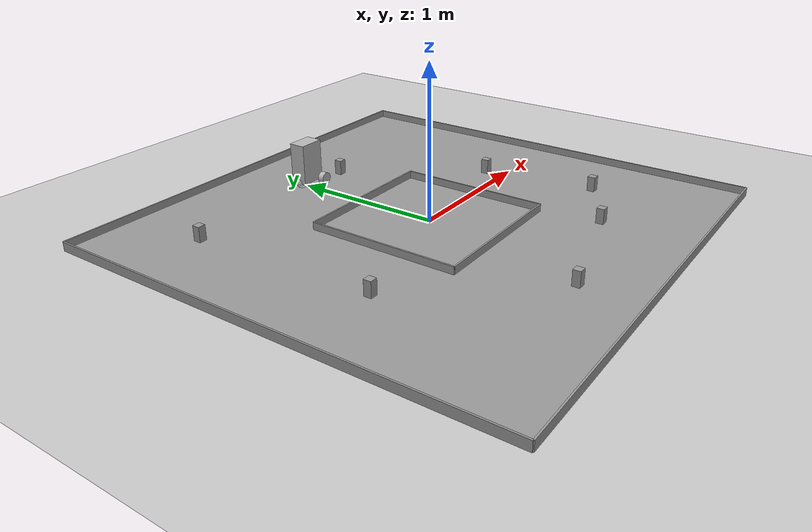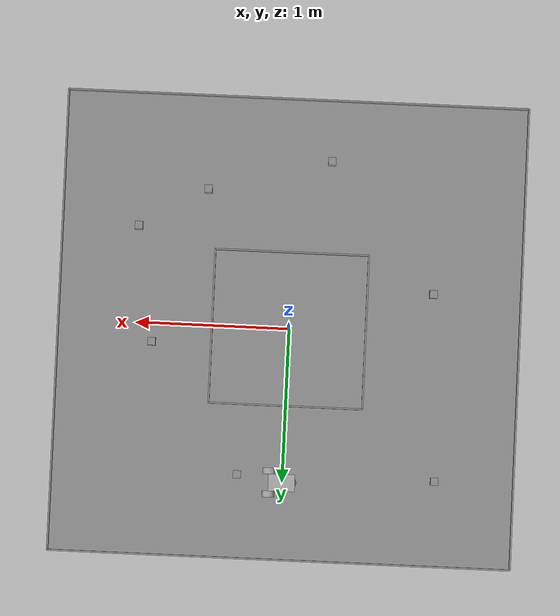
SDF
<sdf version="1.7">
 <world name="default">
  <light name="sun" type="directional">
   <pose>0 0 10 0 -0 0</pose>
   <diffuse>0.8 0.8 0.8 1</diffuse>
   <specular>0.2 0.2 0.2 1</specular>
   <attenuation>
    <range>1000</range>
    <constant>0.9</constant>
    <linear>0.01</linear>
    <quadratic>0.001</quadratic>
   </attenuation>
   <direction>-0.5 0.1 -0.9</direction>
   <spot><inner_angle>0</inner_angle><outer_angle>0</outer_angle><falloff>0</falloff></spot>
  </light>
  <model name="ground_plane">
   <static>1</static>
   <link name="link">
    <collision name="collision">
     <geometry><plane><normal>0 0 1</normal><size>100 100</size></plane></geometry>
     <surface><friction><ode><mu>100</mu><mu2>50</mu2></ode></friction></surface>
    </collision>
    <visual name="visual">
     <cast_shadows>0</cast_shadows>
     <geometry><plane><normal>0 0 1</normal><size>100 100</size></plane></geometry>
     <material>
      <script><uri>file://media/materials/scripts/gazebo.material</uri><name>Gazebo/Grey</name></script>
     </material>
    </visual>
   </link>
  </model>
  <gravity>0 0 -9.8</gravity>
  <magnetic_field>6e-06 2.3e-05 -4.2e-05</magnetic_field>
  <atmosphere type="adiabatic"/>
  <physics type="ode">
   <max_step_size>0.001</max_step_size>
   <real_time_factor>1</real_time_factor>
   <real_time_update_rate>1000</real_time_update_rate>
  </physics>
  <scene><ambient>0.4 0.4 0.4 1</ambient><background>0.7 0.7 0.7 1</background><shadows>1</shadows></scene>
  <audio><device>default</device></audio>
  <spherical_coordinates>
   <surface_model>EARTH_WGS84</surface_model>
   <latitude_deg>0</latitude_deg>
   <longitude_deg>0</longitude_deg>
   <elevation>0</elevation>
   <heading_deg>0</heading_deg>
  </spherical_coordinates>
  <model name="WRO_FIELD_2025">
   <link name="link_0">
    <inertial>
     <mass>1</mass>
     <inertia>
      <ixx>0.166667</ixx>
      <ixy>0</ixy>
      <ixz>0</ixz>
      <iyy>0.166667</iyy>
      <iyz>0</iyz>
      <izz>0.166667</izz>
     </inertia>
    </inertial>
    <pose>0 0 -0.044444 0 -0 0</pose>
    <visual name="visual">
     <geometry><box><size>3 3 0.1</size></box></geometry>
     <material>
      <lighting>1</lighting>
      <script><uri>file://media/materials/scripts/gazebo.material</uri><name>Gazebo/Grey</name></script>
      <shader type="pixel"><normal_map>__default__</normal_map></shader>
      <ambient>0.3 0.3 0.3 1</ambient>
      <diffuse>0.7 0.7 0.7 1</diffuse>
      <specular>0.01 0.01 0.01 1</specular>
      <emissive>0 0 0 1</emissive>
     </material>
    </visual>
    <collision name="collision_2">
     <geometry><box><size>3 3 0.1</size></box></geometry>
     <surface>
      <friction>
       <ode><mu>1</mu><mu2>1</mu2><fdir1>0 0 0</fdir1><slip1>0</slip1><slip2>0</slip2></ode>
       <torsional>
        <coefficient>1</coefficient>
        <patch_radius>0</patch_radius>
        <surface_radius>0</surface_radius>
        <use_patch_radius>1</use_patch_radius>
        <ode><slip>0</slip></ode>
       </torsional>
      </friction>
      <bounce><restitution_coefficient>0</restitution_coefficient><threshold>1e+06</threshold></bounce>
      <contact>
       <collide_without_contact>0</collide_without_contact>
       <collide_without_contact_bitmask>1</collide_without_contact_bitmask>
       <collide_bitmask>1</collide_bitmask>
       <ode>
        <soft_cfm>0</soft_cfm>
        <soft_erp>0.2</soft_erp>
        <kp>1e+13</kp>
        <kd>1</kd>
        <max_vel>0.01</max_vel>
        <min_depth>0</min_depth>
       </ode>
       <bullet>
        <split_impulse>1</split_impulse>
        <split_impulse_penetration_threshold>-0.01</split_impulse_penetration_threshold>
        <soft_cfm>0</soft_cfm>
        <soft_erp>0.2</soft_erp>
        <kp>1e+13</kp>
        <kd>1</kd>
       </bullet>
      </contact>
     </surface>
    </collision>
   </link>
   <link name="link_1">
    <inertial>
     <mass>1</mass>
     <inertia>
      <ixx>0.166667</ixx>
      <ixy>0</ixy>
      <ixz>0</ixz>
      <iyy>0.166667</iyy>
      <iyz>0</iyz>
      <izz>0.166667</izz>
     </inertia>
    </inertial>
    <pose>0 1.5 0.005556 0 -0 0</pose>
    <visual name="visual">
     <geometry><box><size>3 0.01 0.1</size></box></geometry>
     <material>
      <lighting>1</lighting>
      <script><uri>file://media/materials/scripts/gazebo.material</uri><name>Gazebo/Grey</name></script>
      <shader type="pixel"><normal_map>__default__</normal_map></shader>
      <ambient>0.3 0.3 0.3 1</ambient>
      <diffuse>0.7 0.7 0.7 1</diffuse>
      <specular>0.01 0.01 0.01 1</specular>
      <emissive>0 0 0 1</emissive>
     </material>
    </visual>
    <collision name="collision_1">
     <geometry><box><size>3 0.01 0.1</size></box></geometry>
     <surface>
      <friction>
       <ode><mu>1</mu><mu2>1</mu2><fdir1>0 0 0</fdir1><slip1>0</slip1><slip2>0</slip2></ode>
       <torsional>
        <coefficient>1</coefficient>
        <patch_radius>0</patch_radius>
        <surface_radius>0</surface_radius>
        <use_patch_radius>1</use_patch_radius>
        <ode><slip>0</slip></ode>
       </torsional>
      </friction>
      <bounce><restitution_coefficient>0</restitution_coefficient><threshold>1e+06</threshold></bounce>
      <contact>
       <collide_without_contact>0</collide_without_contact>
       <collide_without_contact_bitmask>1</collide_without_contact_bitmask>
       <collide_bitmask>1</collide_bitmask>
       <ode>
        <soft_cfm>0</soft_cfm>
        <soft_erp>0.2</soft_erp>
        <kp>1e+13</kp>
        <kd>1</kd>
        <max_vel>0.01</max_vel>
        <min_depth>0</min_depth>
       </ode>
       <bullet>
        <split_impulse>1</split_impulse>
        <split_impulse_penetration_threshold>-0.01</split_impulse_penetration_threshold>
        <soft_cfm>0</soft_cfm>
        <soft_erp>0.2</soft_erp>
        <kp>1e+13</kp>
        <kd>1</kd>
       </bullet>
      </contact>
     </surface>
    </collision>
   </link>
   <link name="link_1_clone">
    <inertial>
     <mass>1</mass>
     <inertia>
      <ixx>0.166667</ixx>
      <ixy>0</ixy>
      <ixz>0</ixz>
      <iyy>0.166667</iyy>
      <iyz>0</iyz>
      <izz>0.166667</izz>
     </inertia>
    </inertial>
    <pose>-1.5 0 0.005556 0 -0 1.5708</pose>
    <visual name="visual">
     <geometry><box><size>3 0.01 0.1</size></box></geometry>
     <material>
      <lighting>1</lighting>
      <script><uri>file://media/materials/scripts/gazebo.material</uri><name>Gazebo/Grey</name></script>
      <shader type="pixel"><normal_map>__default__</normal_map></shader>
      <ambient>0.3 0.3 0.3 1</ambient>
      <diffuse>0.7 0.7 0.7 1</diffuse>
      <specular>0.01 0.01 0.01 1</specular>
      <emissive>0 0 0 1</emissive>
     </material>
    </visual>
    <collision name="collision_1">
     <geometry><box><size>3 0.01 0.1</size></box></geometry>
     <surface>
      <friction>
       <ode><mu>1</mu><mu2>1</mu2><fdir1>0 0 0</fdir1><slip1>0</slip1><slip2>0</slip2></ode>
       <torsional>
        <coefficient>1</coefficient>
        <patch_radius>0</patch_radius>
        <surface_radius>0</surface_radius>
        <use_patch_radius>1</use_patch_radius>
        <ode><slip>0</slip></ode>
       </torsional>
      </friction>
      <bounce><restitution_coefficient>0</restitution_coefficient><threshold>1e+06</threshold></bounce>
      <contact>
       <collide_without_contact>0</collide_without_contact>
       <collide_without_contact_bitmask>1</collide_without_contact_bitmask>
       <collide_bitmask>1</collide_bitmask>
       <ode>
        <soft_cfm>0</soft_cfm>
        <soft_erp>0.2</soft_erp>
        <kp>1e+13</kp>
        <kd>1</kd>
        <max_vel>0.01</max_vel>
        <min_depth>0</min_depth>
       </ode>
       <bullet>
        <split_impulse>1</split_impulse>
        <split_impulse_penetration_threshold>-0.01</split_impulse_penetration_threshold>
        <soft_cfm>0</soft_cfm>
        <soft_erp>0.2</soft_erp>
        <kp>1e+13</kp>
        <kd>1</kd>
       </bullet>
      </contact>
     </surface>
    </collision>
   </link>
   <link name="link_1_clone_0">
    <inertial>
     <mass>1</mass>
     <inertia>
      <ixx>0.166667</ixx>
      <ixy>0</ixy>
      <ixz>0</ixz>
      <iyy>0.166667</iyy>
      <iyz>0</iyz>
      <izz>0.166667</izz>
     </inertia>
    </inertial>
    <pose>1.5 0 0.005556 0 -0 1.5708</pose>
    <visual name="visual">
     <geometry><box><size>3 0.01 0.1</size></box></geometry>
     <material>
      <lighting>1</lighting>
      <script><uri>file://media/materials/scripts/gazebo.material</uri><name>Gazebo/Grey</name></script>
      <shader type="pixel"><normal_map>__default__</normal_map></shader>
      <ambient>0.3 0.3 0.3 1</ambient>
      <diffuse>0.7 0.7 0.7 1</diffuse>
      <specular>0.01 0.01 0.01 1</specular>
      <emissive>0 0 0 1</emissive>
     </material>
    </visual>
    <collision name="collision_1">
     <geometry><box><size>3 0.01 0.1</size></box></geometry>
     <surface>
      <friction>
       <ode><mu>1</mu><mu2>1</mu2><fdir1>0 0 0</fdir1><slip1>0</slip1><slip2>0</slip2></ode>
       <torsional>
        <coefficient>1</coefficient>
        <patch_radius>0</patch_radius>
        <surface_radius>0</surface_radius>
        <use_patch_radius>1</use_patch_radius>
        <ode><slip>0</slip></ode>
       </torsional>
      </friction>
      <bounce><restitution_coefficient>0</restitution_coefficient><threshold>1e+06</threshold></bounce>
      <contact>
       <collide_without_contact>0</collide_without_contact>
       <collide_without_contact_bitmask>1</collide_without_contact_bitmask>
       <collide_bitmask>1</collide_bitmask>
       <ode>
        <soft_cfm>0</soft_cfm>
        <soft_erp>0.2</soft_erp>
        <kp>1e+13</kp>
        <kd>1</kd>
        <max_vel>0.01</max_vel>
        <min_depth>0</min_depth>
       </ode>
       <bullet>
        <split_impulse>1</split_impulse>
        <split_impulse_penetration_threshold>-0.01</split_impulse_penetration_threshold>
        <soft_cfm>0</soft_cfm>
        <soft_erp>0.2</soft_erp>
        <kp>1e+13</kp>
        <kd>1</kd>
       </bullet>
      </contact>
     </surface>
    </collision>
   </link>
   <link name="link_1_clone_0_clone">
    <inertial>
     <mass>1</mass>
     <inertia>
      <ixx>0.166667</ixx>
      <ixy>0</ixy>
      <ixz>0</ixz>
      <iyy>0.166667</iyy>
      <iyz>0</iyz>
      <izz>0.166667</izz>
     </inertia>
    </inertial>
    <pose>0.5 0 0.005556 0 -0 1.5708</pose>
    <visual name="visual">
     <geometry><box><size>1 0.01 0.1</size></box></geometry>
     <material>
      <lighting>1</lighting>
      <script><uri>file://media/materials/scripts/gazebo.material</uri><name>Gazebo/Grey</name></script>
      <shader type="pixel"><normal_map>__default__</normal_map></shader>
      <ambient>0.3 0.3 0.3 1</ambient>
      <diffuse>0.7 0.7 0.7 1</diffuse>
      <specular>0.01 0.01 0.01 1</specular>
      <emissive>0 0 0 1</emissive>
     </material>
    </visual>
    <collision name="collision_2">
     <geometry><box><size>1 0.01 0.1</size></box></geometry>
     <surface>
      <friction>
       <ode><mu>1</mu><mu2>1</mu2><fdir1>0 0 0</fdir1><slip1>0</slip1><slip2>0</slip2></ode>
       <torsional>
        <coefficient>1</coefficient>
        <patch_radius>0</patch_radius>
        <surface_radius>0</surface_radius>
        <use_patch_radius>1</use_patch_radius>
        <ode><slip>0</slip></ode>
       </torsional>
      </friction>
      <bounce><restitution_coefficient>0</restitution_coefficient><threshold>1e+06</threshold></bounce>
      <contact>
       <collide_without_contact>0</collide_without_contact>
       <collide_without_contact_bitmask>1</collide_without_contact_bitmask>
       <collide_bitmask>1</collide_bitmask>
       <ode>
        <soft_cfm>0</soft_cfm>
        <soft_erp>0.2</soft_erp>
        <kp>1e+13</kp>
        <kd>1</kd>
        <max_vel>0.01</max_vel>
        <min_depth>0</min_depth>
       </ode>
       <bullet>
        <split_impulse>1</split_impulse>
        <split_impulse_penetration_threshold>-0.01</split_impulse_penetration_threshold>
        <soft_cfm>0</soft_cfm>
        <soft_erp>0.2</soft_erp>
        <kp>1e+13</kp>
        <kd>1</kd>
       </bullet>
      </contact>
     </surface>
    </collision>
   </link>
   <link name="link_1_clone_1">
    <inertial>
     <mass>1</mass>
     <inertia>
      <ixx>0.166667</ixx>
      <ixy>0</ixy>
      <ixz>0</ixz>
      <iyy>0.166667</iyy>
      <iyz>0</iyz>
      <izz>0.166667</izz>
     </inertia>
    </inertial>
    <pose>0 -1.5 0.005556 0 0 -3.14139</pose>
    <visual name="visual">
     <geometry><box><size>3 0.01 0.1</size></box></geometry>
     <material>
      <lighting>1</lighting>
      <script><uri>file://media/materials/scripts/gazebo.material</uri><name>Gazebo/Grey</name></script>
      <shader type="pixel"><normal_map>__default__</normal_map></shader>
      <ambient>0.3 0.3 0.3 1</ambient>
      <diffuse>0.7 0.7 0.7 1</diffuse>
      <specular>0.01 0.01 0.01 1</specular>
      <emissive>0 0 0 1</emissive>
     </material>
    </visual>
    <collision name="collision_1">
     <geometry><box><size>3 0.01 0.1</size></box></geometry>
     <surface>
      <friction>
       <ode><mu>1</mu><mu2>1</mu2><fdir1>0 0 0</fdir1><slip1>0</slip1><slip2>0</slip2></ode>
       <torsional>
        <coefficient>1</coefficient>
        <patch_radius>0</patch_radius>
        <surface_radius>0</surface_radius>
        <use_patch_radius>1</use_patch_radius>
        <ode><slip>0</slip></ode>
       </torsional>
      </friction>
      <bounce><restitution_coefficient>0</restitution_coefficient><threshold>1e+06</threshold></bounce>
      <contact>
       <collide_without_contact>0</collide_without_contact>
       <collide_without_contact_bitmask>1</collide_without_contact_bitmask>
       <collide_bitmask>1</collide_bitmask>
       <ode>
        <soft_cfm>0</soft_cfm>
        <soft_erp>0.2</soft_erp>
        <kp>1e+13</kp>
        <kd>1</kd>
        <max_vel>0.01</max_vel>
        <min_depth>0</min_depth>
       </ode>
       <bullet>
        <split_impulse>1</split_impulse>
        <split_impulse_penetration_threshold>-0.01</split_impulse_penetration_threshold>
        <soft_cfm>0</soft_cfm>
        <soft_erp>0.2</soft_erp>
        <kp>1e+13</kp>
        <kd>1</kd>
       </bullet>
      </contact>
     </surface>
    </collision>
   </link>
   <link name="link_1_clone_1_clone">
    <inertial>
     <mass>1</mass>
     <inertia>
      <ixx>0.166667</ixx>
      <ixy>0</ixy>
      <ixz>0</ixz>
      <iyy>0.166667</iyy>
      <iyz>0</iyz>
      <izz>0.166667</izz>
     </inertia>
    </inertial>
    <pose>0 -0.5 0.005556 0 0 -3.14139</pose>
    <visual name="visual">
     <geometry><box><size>1 0.01 0.1</size></box></geometry>
     <material>
      <lighting>1</lighting>
      <script><uri>file://media/materials/scripts/gazebo.material</uri><name>Gazebo/Grey</name></script>
      <shader type="pixel"><normal_map>__default__</normal_map></shader>
      <ambient>0.3 0.3 0.3 1</ambient>
      <diffuse>0.7 0.7 0.7 1</diffuse>
      <specular>0.01 0.01 0.01 1</specular>
      <emissive>0 0 0 1</emissive>
     </material>
    </visual>
    <collision name="collision_2">
     <geometry><box><size>1 0.01 0.1</size></box></geometry>
     <surface>
      <friction>
       <ode><mu>1</mu><mu2>1</mu2><fdir1>0 0 0</fdir1><slip1>0</slip1><slip2>0</slip2></ode>
       <torsional>
        <coefficient>1</coefficient>
        <patch_radius>0</patch_radius>
        <surface_radius>0</surface_radius>
        <use_patch_radius>1</use_patch_radius>
        <ode><slip>0</slip></ode>
       </torsional>
      </friction>
      <bounce><restitution_coefficient>0</restitution_coefficient><threshold>1e+06</threshold></bounce>
      <contact>
       <collide_without_contact>0</collide_without_contact>
       <collide_without_contact_bitmask>1</collide_without_contact_bitmask>
       <collide_bitmask>1</collide_bitmask>
       <ode>
        <soft_cfm>0</soft_cfm>
        <soft_erp>0.2</soft_erp>
        <kp>1e+13</kp>
        <kd>1</kd>
        <max_vel>0.01</max_vel>
        <min_depth>0</min_depth>
       </ode>
       <bullet>
        <split_impulse>1</split_impulse>
        <split_impulse_penetration_threshold>-0.01</split_impulse_penetration_threshold>
        <soft_cfm>0</soft_cfm>
        <soft_erp>0.2</soft_erp>
        <kp>1e+13</kp>
        <kd>1</kd>
       </bullet>
      </contact>
     </surface>
    </collision>
   </link>
   <link name="link_1_clone_2">
    <inertial>
     <mass>1</mass>
     <inertia>
      <ixx>0.166667</ixx>
      <ixy>0</ixy>
      <ixz>0</ixz>
      <iyy>0.166667</iyy>
      <iyz>0</iyz>
      <izz>0.166667</izz>
     </inertia>
    </inertial>
    <pose>0 0.5 0.005556 0 -0 0</pose>
    <visual name="visual">
     <geometry><box><size>1 0.01 0.1</size></box></geometry>
     <material>
      <lighting>1</lighting>
      <script><uri>file://media/materials/scripts/gazebo.material</uri><name>Gazebo/Grey</name></script>
      <shader type="pixel"><normal_map>__default__</normal_map></shader>
      <ambient>0.3 0.3 0.3 1</ambient>
      <diffuse>0.7 0.7 0.7 1</diffuse>
      <specular>0.01 0.01 0.01 1</specular>
      <emissive>0 0 0 1</emissive>
     </material>
    </visual>
    <collision name="collision_2">
     <geometry><box><size>1 0.01 0.1</size></box></geometry>
     <surface>
      <friction>
       <ode><mu>1</mu><mu2>1</mu2><fdir1>0 0 0</fdir1><slip1>0</slip1><slip2>0</slip2></ode>
       <torsional>
        <coefficient>1</coefficient>
        <patch_radius>0</patch_radius>
        <surface_radius>0</surface_radius>
        <use_patch_radius>1</use_patch_radius>
        <ode><slip>0</slip></ode>
       </torsional>
      </friction>
      <bounce><restitution_coefficient>0</restitution_coefficient><threshold>1e+06</threshold></bounce>
      <contact>
       <collide_without_contact>0</collide_without_contact>
       <collide_without_contact_bitmask>1</collide_without_contact_bitmask>
       <collide_bitmask>1</collide_bitmask>
       <ode>
        <soft_cfm>0</soft_cfm>
        <soft_erp>0.2</soft_erp>
        <kp>1e+13</kp>
        <kd>1</kd>
        <max_vel>0.01</max_vel>
        <min_depth>0</min_depth>
       </ode>
       <bullet>
        <split_impulse>1</split_impulse>
        <split_impulse_penetration_threshold>-0.01</split_impulse_penetration_threshold>
        <soft_cfm>0</soft_cfm>
        <soft_erp>0.2</soft_erp>
        <kp>1e+13</kp>
        <kd>1</kd>
       </bullet>
      </contact>
     </surface>
    </collision>
   </link>
   <link name="link_1_clone_clone">
    <inertial>
     <mass>1</mass>
     <inertia>
      <ixx>0.166667</ixx>
      <ixy>0</ixy>
      <ixz>0</ixz>
      <iyy>0.166667</iyy>
      <iyz>0</iyz>
      <izz>0.166667</izz>
     </inertia>
    </inertial>
    <pose>-0.5 0 0.005556 0 -0 1.5708</pose>
    <visual name="visual">
     <geometry><box><size>1 0.01 0.1</size></box></geometry>
     <material>
      <lighting>1</lighting>
      <script><uri>file://media/materials/scripts/gazebo.material</uri><name>Gazebo/Grey</name></script>
      <shader type="pixel"><normal_map>__default__</normal_map></shader>
      <ambient>0.3 0.3 0.3 1</ambient>
      <diffuse>0.7 0.7 0.7 1</diffuse>
      <specular>0.01 0.01 0.01 1</specular>
      <emissive>0 0 0 1</emissive>
     </material>
    </visual>
    <collision name="collision_2">
     <geometry><box><size>1 0.01 0.1</size></box></geometry>
     <surface>
      <friction>
       <ode><mu>1</mu><mu2>1</mu2><fdir1>0 0 0</fdir1><slip1>0</slip1><slip2>0</slip2></ode>
       <torsional>
        <coefficient>1</coefficient>
        <patch_radius>0</patch_radius>
        <surface_radius>0</surface_radius>
        <use_patch_radius>1</use_patch_radius>
        <ode><slip>0</slip></ode>
       </torsional>
      </friction>
      <bounce><restitution_coefficient>0</restitution_coefficient><threshold>1e+06</threshold></bounce>
      <contact>
       <collide_without_contact>0</collide_without_contact>
       <collide_without_contact_bitmask>1</collide_without_contact_bitmask>
       <collide_bitmask>1</collide_bitmask>
       <ode>
        <soft_cfm>0</soft_cfm>
        <soft_erp>0.2</soft_erp>
        <kp>1e+13</kp>
        <kd>1</kd>
        <max_vel>0.01</max_vel>
        <min_depth>0</min_depth>
       </ode>
       <bullet>
        <split_impulse>1</split_impulse>
        <split_impulse_penetration_threshold>-0.01</split_impulse_penetration_threshold>
        <soft_cfm>0</soft_cfm>
        <soft_erp>0.2</soft_erp>
        <kp>1e+13</kp>
        <kd>1</kd>
       </bullet>
      </contact>
     </surface>
    </collision>
   </link>
   <static>1</static>
  </model>
  <model name="lidar_bot">
   <link name="base_link">
    <inertial>
     <pose>0 0 -0.005577 0 -0 0</pose>
     <mass>1.04</mass>
     <inertia>
      <ixx>0.00190865</ixx>
      <ixy>0</ixy>
      <ixz>0</ixz>
      <iyy>0.00190865</iyy>
      <iyz>0</iyz>
      <izz>0.0011</izz>
     </inertia>
    </inertial>
    <collision name="base_link_collision"><geometry><box><size>0.17 0.11 0.27</size></box></geometry></collision>
    <collision name="base_link_fixed_joint_lump__laser_collision_1">
     <pose>0 0 -0.005 0 -0 0</pose>
     <geometry><cylinder><length>0.02</length><radius>0.02</radius></cylinder></geometry>
    </collision>
    <visual name="base_link_visual"><geometry><box><size>0.17 0.11 0.27</size></box></geometry></visual>
    <visual name="base_link_fixed_joint_lump__laser_visual_1">
     <pose>0 0 -0.005 0 -0 0</pose>
     <geometry><cylinder><length>0.02</length><radius>0.02</radius></cylinder></geometry>
    </visual>
    <sensor name="lidar" type="ray">
     <visualize>1</visualize>
     <update_rate>10</update_rate>
     <ray>
      <scan>
       <horizontal>
        <samples>360</samples>
        <resolution>1</resolution>
        <min_angle>-1.5708</min_angle>
        <max_angle>1.5708</max_angle>
       </horizontal>
       <vertical><samples>1</samples><min_angle>0</min_angle><max_angle>0</max_angle></vertical>
      </scan>
      <range><min>0.12</min><max>3.5</max></range>
      <noise><type>gaussian</type><mean>0</mean><stddev>0.01</stddev></noise>
     </ray>
     <plugin name="gazebo_ros_laser_controller" filename="libgazebo_ros_ray_sensor.so">
      <ros><namespace>/</namespace><remapping>/gazebo_ros_laser_controller/out:=/scan</remapping></ros>
      <output_type>sensor_msgs/LaserScan</output_type>
      <frameName>laser</frameName>
     </plugin>
     <pose>0 0 -0.145 0 -0 0</pose>
    </sensor>
   </link>
   <joint name="caster_wheel_joint" type="revolute">
    <pose relative_to="base_link">0.055 0 -0.135 0 -0 0</pose>
    <parent>base_link</parent>
    <child>caster_wheel</child>
    <axis>
     <xyz>1 0 0</xyz>
     <limit><lower>-1e+16</lower><upper>1e+16</upper></limit>
     <dynamics><spring_reference>0</spring_reference><spring_stiffness>0</spring_stiffness></dynamics>
    </axis>
   </joint>
   <link name="caster_wheel">
    <pose relative_to="caster_wheel_joint">0 0 0 0 -0 0</pose>
    <inertial>
     <mass>3</mass>
     <inertia><ixx>1e-05</ixx><ixy>0</ixy><ixz>0</ixz><iyy>1e-05</iyy><iyz>0</iyz><izz>1e-05</izz></inertia>
    </inertial>
    <collision name="caster_wheel_collision">
     <geometry><sphere><radius>0.04</radius></sphere></geometry>
    </collision>
    <visual name="caster_wheel_visual"><geometry><sphere><radius>0.04</radius></sphere></geometry></visual>
   </link>
   <joint name="left_wheel_joint" type="revolute">
    <pose relative_to="base_link">-0.085 0.075 -0.135 0 -0 0</pose>
    <parent>base_link</parent>
    <child>left_wheel</child>
    <axis>
     <xyz>0 1 0</xyz>
     <limit><lower>-1e+16</lower><upper>1e+16</upper></limit>
     <dynamics><spring_reference>0</spring_reference><spring_stiffness>0</spring_stiffness></dynamics>
    </axis>
   </joint>
   <link name="left_wheel">
    <pose relative_to="left_wheel_joint">0 0 0 0 -0 0</pose>
    <inertial>
     <mass>2</mass>
     <inertia><ixx>0.0002</ixx><ixy>0</ixy><ixz>0</ixz><iyy>0.0002</iyy><iyz>0</iyz><izz>0.0002</izz></inertia>
    </inertial>
    <collision name="left_wheel_collision">
     <pose>0 0 0 1.5708 -0 0</pose>
     <geometry><cylinder><length>0.04</length><radius>0.04</radius></cylinder></geometry>
     <surface><friction><ode><mu>1</mu><mu2>1</mu2></ode></friction></surface>
    </collision>
    <visual name="left_wheel_visual">
     <pose>0 0 0 1.5708 -0 0</pose>
     <geometry><cylinder><length>0.04</length><radius>0.04</radius></cylinder></geometry>
    </visual>
   </link>
   <joint name="right_wheel_joint" type="revolute">
    <pose relative_to="base_link">-0.085 -0.075 -0.135 0 -0 0</pose>
    <parent>base_link</parent>
    <child>right_wheel</child>
    <axis>
     <xyz>0 1 0</xyz>
     <limit><lower>-1e+16</lower><upper>1e+16</upper></limit>
     <dynamics><spring_reference>0</spring_reference><spring_stiffness>0</spring_stiffness></dynamics>
    </axis>
   </joint>
   <link name="right_wheel">
    <pose relative_to="right_wheel_joint">0 0 0 0 -0 0</pose>
    <inertial>
     <mass>2</mass>
     <inertia><ixx>0.0002</ixx><ixy>0</ixy><ixz>0</ixz><iyy>0.0002</iyy><iyz>0</iyz><izz>0.0002</izz></inertia>
    </inertial>
    <collision name="right_wheel_collision">
     <pose>0 0 0 1.5708 -0 0</pose>
     <geometry><cylinder><length>0.04</length><radius>0.04</radius></cylinder></geometry>
     <surface><friction><ode><mu>1</mu><mu2>1</mu2></ode></friction></surface>
    </collision>
    <visual name="right_wheel_visual">
     <pose>0 0 0 1.5708 -0 0</pose>
     <geometry><cylinder><length>0.04</length><radius>0.04</radius></cylinder></geometry>
    </visual>
   </link>
   <static>0</static>
   <plugin name="diff_drive_controller" filename="libgazebo_ros_diff_drive.so">
    <ros><namespace>/</namespace><remapping>cmd_vel:=/cmd_vel</remapping><remapping>odom:=/odom</remapping></ros>
    <update_rate>50.0</update_rate>
    <left_joint>left_wheel_joint</left_joint>
    <right_joint>right_wheel_joint</right_joint>
    <wheel_separation>0.168</wheel_separation>
    <wheel_diameter>0.04</wheel_diameter>
    <publish_odom>1</publish_odom>
    <odom_topic>odom</odom_topic>
    <odom_frame>odom</odom_frame>
    <publish_tf>1</publish_tf>
    <robot_base_frame>base_link</robot_base_frame>
   </plugin>
   <pose>0.002399 0.999764 0.180556 0 1e-06 -3.13195</pose>
  </model>
  <model name="block">
   <model name="block">
    <link name="link_0">
     <inertial>
      <mass>1</mass>
      <inertia>
       <ixx>0.166667</ixx>
       <ixy>0</ixy>
       <ixz>0</ixz>
       <iyy>0.166667</iyy>
       <iyz>0</iyz>
       <izz>0.166667</izz>
      </inertia>
     </inertial>
     <pose>3.90384 -1.45755 -1.3e-05 3e-06 4e-06 -0</pose>
     <visual name="visual">
      <geometry><box><size>0.05 0.05 0.1</size></box></geometry>
      <material>
       <lighting>1</lighting>
       <script><uri>file://media/materials/scripts/gazebo.material</uri><name>Gazebo/Grey</name></script>
       <shader type="pixel"><normal_map>__default__</normal_map></shader>
       <ambient>0.3 0.3 0.3 1</ambient>
       <diffuse>0.7 0.7 0.7 1</diffuse>
       <specular>0.01 0.01 0.01 1</specular>
       <emissive>0 0 0 1</emissive>
      </material>
     </visual>
     <collision name="collision_1">
      <geometry><box><size>0.05 0.05 0.1</size></box></geometry>
      <surface>
       <friction>
        <ode><mu>1</mu><mu2>1</mu2><fdir1>0 0 0</fdir1><slip1>0</slip1><slip2>0</slip2></ode>
        <torsional>
         <coefficient>1</coefficient>
         <patch_radius>0</patch_radius>
         <surface_radius>0</surface_radius>
         <use_patch_radius>1</use_patch_radius>
         <ode><slip>0</slip></ode>
        </torsional>
       </friction>
       <bounce><restitution_coefficient>0</restitution_coefficient><threshold>1e+06</threshold></bounce>
       <contact>
        <collide_without_contact>0</collide_without_contact>
        <collide_without_contact_bitmask>1</collide_without_contact_bitmask>
        <collide_bitmask>1</collide_bitmask>
        <ode>
         <soft_cfm>0</soft_cfm>
         <soft_erp>0.2</soft_erp>
         <kp>1e+13</kp>
         <kd>1</kd>
         <max_vel>0.01</max_vel>
         <min_depth>0</min_depth>
        </ode>
        <bullet>
         <split_impulse>1</split_impulse>
         <split_impulse_penetration_threshold>-0.01</split_impulse_penetration_threshold>
         <soft_cfm>0</soft_cfm>
         <soft_erp>0.2</soft_erp>
         <kp>1e+13</kp>
         <kd>1</kd>
        </bullet>
       </contact>
      </surface>
     </collision>
    </link>
    <static>0</static>
    <pose>1.23204 -0.655598 -7e-06 0 -0 0</pose>
   </model>
   <static>0</static>
   <pose>-6.12154 3.05997 0.057626 -2e-06 0.000398 2.8e-05</pose>
  </model>
  <model name="block_0">
   <model name="block">
    <link name="link_0">
     <inertial>
      <mass>1</mass>
      <inertia>
       <ixx>0.166667</ixx>
       <ixy>0</ixy>
       <ixz>0</ixz>
       <iyy>0.166667</iyy>
       <iyz>0</iyz>
       <izz>0.166667</izz>
      </inertia>
     </inertial>
     <pose>3.90384 -1.45755 -1.3e-05 3e-06 4e-06 -0</pose>
     <visual name="visual">
      <geometry><box><size>0.05 0.05 0.1</size></box></geometry>
      <material>
       <lighting>1</lighting>
       <script><uri>file://media/materials/scripts/gazebo.material</uri><name>Gazebo/Grey</name></script>
       <shader type="pixel"><normal_map>__default__</normal_map></shader>
       <ambient>0.3 0.3 0.3 1</ambient>
       <diffuse>0.7 0.7 0.7 1</diffuse>
       <specular>0.01 0.01 0.01 1</specular>
       <emissive>0 0 0 1</emissive>
      </material>
     </visual>
     <collision name="collision_1">
      <geometry><box><size>0.05 0.05 0.1</size></box></geometry>
      <surface>
       <friction>
        <ode><mu>1</mu><mu2>1</mu2><fdir1>0 0 0</fdir1><slip1>0</slip1><slip2>0</slip2></ode>
        <torsional>
         <coefficient>1</coefficient>
         <patch_radius>0</patch_radius>
         <surface_radius>0</surface_radius>
         <use_patch_radius>1</use_patch_radius>
         <ode><slip>0</slip></ode>
        </torsional>
       </friction>
       <bounce><restitution_coefficient>0</restitution_coefficient><threshold>1e+06</threshold></bounce>
       <contact>
        <collide_without_contact>0</collide_without_contact>
        <collide_without_contact_bitmask>1</collide_without_contact_bitmask>
        <collide_bitmask>1</collide_bitmask>
        <ode>
         <soft_cfm>0</soft_cfm>
         <soft_erp>0.2</soft_erp>
         <kp>1e+13</kp>
         <kd>1</kd>
         <max_vel>0.01</max_vel>
         <min_depth>0</min_depth>
        </ode>
        <bullet>
         <split_impulse>1</split_impulse>
         <split_impulse_penetration_threshold>-0.01</split_impulse_penetration_threshold>
         <soft_cfm>0</soft_cfm>
         <soft_erp>0.2</soft_erp>
         <kp>1e+13</kp>
         <kd>1</kd>
        </bullet>
       </contact>
      </surface>
     </collision>
    </link>
    <static>0</static>
    <pose>1.23204 -0.655598 -7e-06 0 -0 0</pose>
   </model>
   <static>0</static>
   <pose>-6.0644 1.84769 0.050961 -4e-06 -0.000901 2.9e-05</pose>
  </model>
  <model name="block_1">
   <model name="block">
    <link name="link_0">
     <inertial>
      <mass>1</mass>
      <inertia>
       <ixx>0.166667</ixx>
       <ixy>0</ixy>
       <ixz>0</ixz>
       <iyy>0.166667</iyy>
       <iyz>0</iyz>
       <izz>0.166667</izz>
      </inertia>
     </inertial>
     <pose>3.90384 -1.45755 -1.3e-05 3e-06 4e-06 -0</pose>
     <visual name="visual">
      <geometry><box><size>0.05 0.05 0.1</size></box></geometry>
      <material>
       <lighting>1</lighting>
       <script><uri>file://media/materials/scripts/gazebo.material</uri><name>Gazebo/Grey</name></script>
       <shader type="pixel"><normal_map>__default__</normal_map></shader>
       <ambient>0.3 0.3 0.3 1</ambient>
       <diffuse>0.7 0.7 0.7 1</diffuse>
       <specular>0.01 0.01 0.01 1</specular>
       <emissive>0 0 0 1</emissive>
      </material>
     </visual>
     <collision name="collision_1">
      <geometry><box><size>0.05 0.05 0.1</size></box></geometry>
      <surface>
       <friction>
        <ode><mu>1</mu><mu2>1</mu2><fdir1>0 0 0</fdir1><slip1>0</slip1><slip2>0</slip2></ode>
        <torsional>
         <coefficient>1</coefficient>
         <patch_radius>0</patch_radius>
         <surface_radius>0</surface_radius>
         <use_patch_radius>1</use_patch_radius>
         <ode><slip>0</slip></ode>
        </torsional>
       </friction>
       <bounce><restitution_coefficient>0</restitution_coefficient><threshold>1e+06</threshold></bounce>
       <contact>
        <collide_without_contact>0</collide_without_contact>
        <collide_without_contact_bitmask>1</collide_without_contact_bitmask>
        <collide_bitmask>1</collide_bitmask>
        <ode>
         <soft_cfm>0</soft_cfm>
         <soft_erp>0.2</soft_erp>
         <kp>1e+13</kp>
         <kd>1</kd>
         <max_vel>0.01</max_vel>
         <min_depth>0</min_depth>
        </ode>
        <bullet>
         <split_impulse>1</split_impulse>
         <split_impulse_penetration_threshold>-0.01</split_impulse_penetration_threshold>
         <soft_cfm>0</soft_cfm>
         <soft_erp>0.2</soft_erp>
         <kp>1e+13</kp>
         <kd>1</kd>
        </bullet>
       </contact>
      </surface>
     </collision>
    </link>
    <static>0</static>
    <pose>1.23204 -0.655598 -7e-06 0 -0 0</pose>
   </model>
   <static>0</static>
   <pose>-5.3699 1.01337 0.061001 -2e-06 0.001052 2.6e-05</pose>
  </model>
  <model name="block_2">
   <model name="block">
    <link name="link_0">
     <inertial>
      <mass>1</mass>
      <inertia>
       <ixx>0.166667</ixx>
       <ixy>0</ixy>
       <ixz>0</ixz>
       <iyy>0.166667</iyy>
       <iyz>0</iyz>
       <izz>0.166667</izz>
      </inertia>
     </inertial>
     <pose>3.90384 -1.45755 -1.3e-05 3e-06 4e-06 -0</pose>
     <visual name="visual">
      <geometry><box><size>0.05 0.05 0.1</size></box></geometry>
      <material>
       <lighting>1</lighting>
       <script><uri>file://media/materials/scripts/gazebo.material</uri><name>Gazebo/Grey</name></script>
       <shader type="pixel"><normal_map>__default__</normal_map></shader>
       <ambient>0.3 0.3 0.3 1</ambient>
       <diffuse>0.7 0.7 0.7 1</diffuse>
       <specular>0.01 0.01 0.01 1</specular>
       <emissive>0 0 0 1</emissive>
      </material>
     </visual>
     <collision name="collision_1">
      <geometry><box><size>0.05 0.05 0.1</size></box></geometry>
      <surface>
       <friction>
        <ode><mu>1</mu><mu2>1</mu2><fdir1>0 0 0</fdir1><slip1>0</slip1><slip2>0</slip2></ode>
        <torsional>
         <coefficient>1</coefficient>
         <patch_radius>0</patch_radius>
         <surface_radius>0</surface_radius>
         <use_patch_radius>1</use_patch_radius>
         <ode><slip>0</slip></ode>
        </torsional>
       </friction>
       <bounce><restitution_coefficient>0</restitution_coefficient><threshold>1e+06</threshold></bounce>
       <contact>
        <collide_without_contact>0</collide_without_contact>
        <collide_without_contact_bitmask>1</collide_without_contact_bitmask>
        <collide_bitmask>1</collide_bitmask>
        <ode>
         <soft_cfm>0</soft_cfm>
         <soft_erp>0.2</soft_erp>
         <kp>1e+13</kp>
         <kd>1</kd>
         <max_vel>0.01</max_vel>
         <min_depth>0</min_depth>
        </ode>
        <bullet>
         <split_impulse>1</split_impulse>
         <split_impulse_penetration_threshold>-0.01</split_impulse_penetration_threshold>
         <soft_cfm>0</soft_cfm>
         <soft_erp>0.2</soft_erp>
         <kp>1e+13</kp>
         <kd>1</kd>
        </bullet>
       </contact>
      </surface>
     </collision>
    </link>
    <static>0</static>
    <pose>1.23204 -0.655598 -7e-06 0 -0 0</pose>
   </model>
   <static>0</static>
   <pose>-4.57495 1.22725 0.061194 -2e-06 0.001089 2.5e-05</pose>
  </model>
  <model name="block_3">
   <model name="block">
    <link name="link_0">
     <inertial>
      <mass>1</mass>
      <inertia>
       <ixx>0.166667</ixx>
       <ixy>0</ixy>
       <ixz>0</ixz>
       <iyy>0.166667</iyy>
       <iyz>0</iyz>
       <izz>0.166667</izz>
      </inertia>
     </inertial>
     <pose>3.90384 -1.45755 -1.3e-05 3e-06 4e-06 -0</pose>
     <visual name="visual">
      <geometry><box><size>0.05 0.05 0.1</size></box></geometry>
      <material>
       <lighting>1</lighting>
       <script><uri>file://media/materials/scripts/gazebo.material</uri><name>Gazebo/Grey</name></script>
       <shader type="pixel"><normal_map>__default__</normal_map></shader>
       <ambient>0.3 0.3 0.3 1</ambient>
       <diffuse>0.7 0.7 0.7 1</diffuse>
       <specular>0.01 0.01 0.01 1</specular>
       <emissive>0 0 0 1</emissive>
      </material>
     </visual>
     <collision name="collision_1">
      <geometry><box><size>0.05 0.05 0.1</size></box></geometry>
      <surface>
       <friction>
        <ode><mu>1</mu><mu2>1</mu2><fdir1>0 0 0</fdir1><slip1>0</slip1><slip2>0</slip2></ode>
        <torsional>
         <coefficient>1</coefficient>
         <patch_radius>0</patch_radius>
         <surface_radius>0</surface_radius>
         <use_patch_radius>1</use_patch_radius>
         <ode><slip>0</slip></ode>
        </torsional>
       </friction>
       <bounce><restitution_coefficient>0</restitution_coefficient><threshold>1e+06</threshold></bounce>
       <contact>
        <collide_without_contact>0</collide_without_contact>
        <collide_without_contact_bitmask>1</collide_without_contact_bitmask>
        <collide_bitmask>1</collide_bitmask>
        <ode>
         <soft_cfm>0</soft_cfm>
         <soft_erp>0.2</soft_erp>
         <kp>1e+13</kp>
         <kd>1</kd>
         <max_vel>0.01</max_vel>
         <min_depth>0</min_depth>
        </ode>
        <bullet>
         <split_impulse>1</split_impulse>
         <split_impulse_penetration_threshold>-0.01</split_impulse_penetration_threshold>
         <soft_cfm>0</soft_cfm>
         <soft_erp>0.2</soft_erp>
         <kp>1e+13</kp>
         <kd>1</kd>
        </bullet>
       </contact>
      </surface>
     </collision>
    </link>
    <static>0</static>
    <pose>1.23204 -0.655598 -7e-06 0 -0 0</pose>
   </model>
   <static>0</static>
   <pose>-4.13377 1.48329 0.060514 -3e-06 0.00096 2.5e-05</pose>
  </model>
  <model name="block_4">
   <model name="block">
    <link name="link_0">
     <inertial>
      <mass>1</mass>
      <inertia>
       <ixx>0.166667</ixx>
       <ixy>0</ixy>
       <ixz>0</ixz>
       <iyy>0.166667</iyy>
       <iyz>0</iyz>
       <izz>0.166667</izz>
      </inertia>
     </inertial>
     <pose>3.90384 -1.45755 -1.3e-05 3e-06 4e-06 -0</pose>
     <visual name="visual">
      <geometry><box><size>0.05 0.05 0.1</size></box></geometry>
      <material>
       <lighting>1</lighting>
       <script><uri>file://media/materials/scripts/gazebo.material</uri><name>Gazebo/Grey</name></script>
       <shader type="pixel"><normal_map>__default__</normal_map></shader>
       <ambient>0.3 0.3 0.3 1</ambient>
       <diffuse>0.7 0.7 0.7 1</diffuse>
       <specular>0.01 0.01 0.01 1</specular>
       <emissive>0 0 0 1</emissive>
      </material>
     </visual>
     <collision name="collision_1">
      <geometry><box><size>0.05 0.05 0.1</size></box></geometry>
      <surface>
       <friction>
        <ode><mu>1</mu><mu2>1</mu2><fdir1>0 0 0</fdir1><slip1>0</slip1><slip2>0</slip2></ode>
        <torsional>
         <coefficient>1</coefficient>
         <patch_radius>0</patch_radius>
         <surface_radius>0</surface_radius>
         <use_patch_radius>1</use_patch_radius>
         <ode><slip>0</slip></ode>
        </torsional>
       </friction>
       <bounce><restitution_coefficient>0</restitution_coefficient><threshold>1e+06</threshold></bounce>
       <contact>
        <collide_without_contact>0</collide_without_contact>
        <collide_without_contact_bitmask>1</collide_without_contact_bitmask>
        <collide_bitmask>1</collide_bitmask>
        <ode>
         <soft_cfm>0</soft_cfm>
         <soft_erp>0.2</soft_erp>
         <kp>1e+13</kp>
         <kd>1</kd>
         <max_vel>0.01</max_vel>
         <min_depth>0</min_depth>
        </ode>
        <bullet>
         <split_impulse>1</split_impulse>
         <split_impulse_penetration_threshold>-0.01</split_impulse_penetration_threshold>
         <soft_cfm>0</soft_cfm>
         <soft_erp>0.2</soft_erp>
         <kp>1e+13</kp>
         <kd>1</kd>
        </bullet>
       </contact>
      </surface>
     </collision>
    </link>
    <static>0</static>
    <pose>1.23204 -0.655598 -7e-06 0 -0 0</pose>
   </model>
   <static>0</static>
   <pose>-4.25087 2.23337 0.054365 -4e-06 -0.000234 2.8e-05</pose>
  </model>
  <model name="block_5">
   <model name="block">
    <link name="link_0">
     <inertial>
      <mass>1</mass>
      <inertia>
       <ixx>0.166667</ixx>
       <ixy>0</ixy>
       <ixz>0</ixz>
       <iyy>0.166667</iyy>
       <iyz>0</iyz>
       <izz>0.166667</izz>
      </inertia>
     </inertial>
     <pose>3.90384 -1.45755 -1.3e-05 3e-06 4e-06 -0</pose>
     <visual name="visual">
      <geometry><box><size>0.05 0.05 0.1</size></box></geometry>
      <material>
       <lighting>1</lighting>
       <script><uri>file://media/materials/scripts/gazebo.material</uri><name>Gazebo/Grey</name></script>
       <shader type="pixel"><normal_map>__default__</normal_map></shader>
       <ambient>0.3 0.3 0.3 1</ambient>
       <diffuse>0.7 0.7 0.7 1</diffuse>
       <specular>0.01 0.01 0.01 1</specular>
       <emissive>0 0 0 1</emissive>
      </material>
     </visual>
     <collision name="collision_1">
      <geometry><box><size>0.05 0.05 0.1</size></box></geometry>
      <surface>
       <friction>
        <ode><mu>1</mu><mu2>1</mu2><fdir1>0 0 0</fdir1><slip1>0</slip1><slip2>0</slip2></ode>
        <torsional>
         <coefficient>1</coefficient>
         <patch_radius>0</patch_radius>
         <surface_radius>0</surface_radius>
         <use_patch_radius>1</use_patch_radius>
         <ode><slip>0</slip></ode>
        </torsional>
       </friction>
       <bounce><restitution_coefficient>0</restitution_coefficient><threshold>1e+06</threshold></bounce>
       <contact>
        <collide_without_contact>0</collide_without_contact>
        <collide_without_contact_bitmask>1</collide_without_contact_bitmask>
        <collide_bitmask>1</collide_bitmask>
        <ode>
         <soft_cfm>0</soft_cfm>
         <soft_erp>0.2</soft_erp>
         <kp>1e+13</kp>
         <kd>1</kd>
         <max_vel>0.01</max_vel>
         <min_depth>0</min_depth>
        </ode>
        <bullet>
         <split_impulse>1</split_impulse>
         <split_impulse_penetration_threshold>-0.01</split_impulse_penetration_threshold>
         <soft_cfm>0</soft_cfm>
         <soft_erp>0.2</soft_erp>
         <kp>1e+13</kp>
         <kd>1</kd>
        </bullet>
       </contact>
      </surface>
     </collision>
    </link>
    <static>0</static>
    <pose>1.23204 -0.655598 -7e-06 0 -0 0</pose>
   </model>
   <static>0</static>
   <pose>-4.84226 3.0698 0.055589 -3e-06 5e-06 2.5e-05</pose>
  </model>
 </world>
</sdf>
